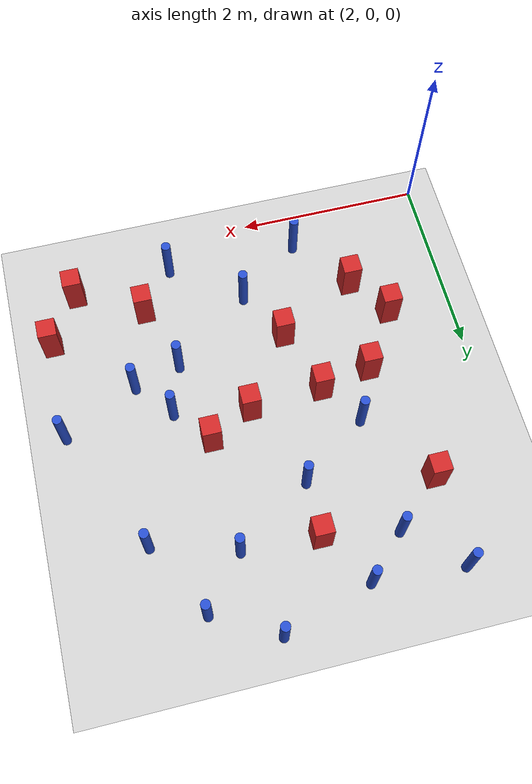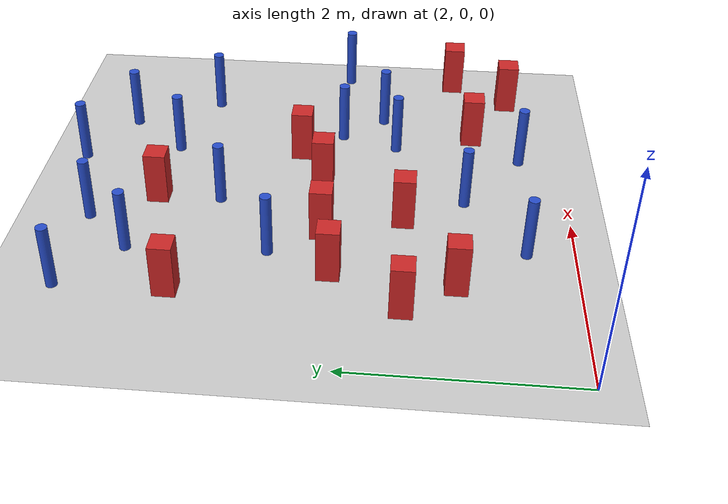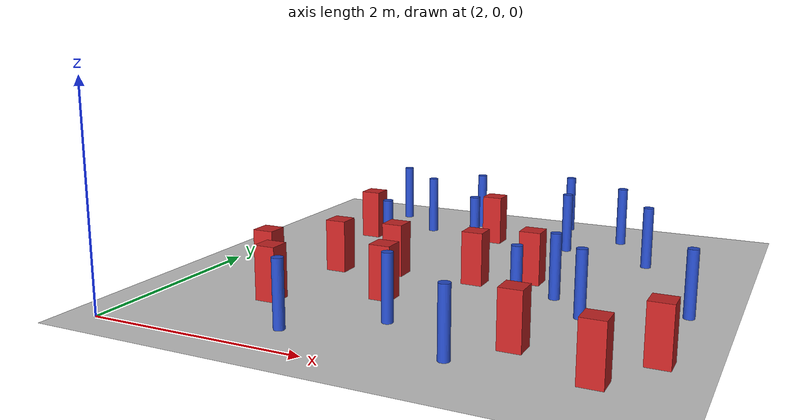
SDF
<sdf version="1.6">
 <world name="default">
  <model name="ground_plane">
   <static>1</static>
   <link name="link">
    <collision name="collision">
     <geometry><plane><normal>0 0 1</normal><size>100 100</size></plane></geometry>
     <surface><friction><ode><mu>100</mu><mu2>50</mu2></ode></friction></surface>
    </collision>
    <visual name="visual">
     <cast_shadows>0</cast_shadows>
     <geometry><plane><normal>0 0 1</normal><size>100 100</size></plane></geometry>
     <material>
      <ambient>1.0 1.0 1.0 1.0</ambient>
      <diffuse>0.8 0.8 0.8 1.0</diffuse>
      <specular>0.01 0.01 0.01 1.000000</specular>
     </material>
    </visual>
   </link>
  </model>
  <model name="square_post_obstacle4">
   <static>true</static>
   <pose>3.69280537728 2.22293517333 -6.11067671241e-07 -5.50515727128e-06 -8.79689657224e-07 2.37013304536e-05</pose>
   <link name="link">
    <pose>0 0 0.25 0 -0 0</pose>
    <inertial>
     <mass>100</mass>
     <inertia>
      <ixx>0.166667</ixx>
      <ixy>0</ixy>
      <ixz>0</ixz>
      <iyy>0.166667</iyy>
      <iyz>0</iyz>
      <izz>0.166667</izz>
     </inertia>
    </inertial>
    <collision name="collision"><geometry><box><size>.2 .2 .5</size></box></geometry></collision>
    <visual name="visual">
     <geometry><box><size>.2 .2 .5</size></box></geometry>
     <material>
      <script><name>Gazebo/Red</name><uri>file://media/materials/scripts/gazebo.material</uri></script>
     </material>
    </visual>
   </link>
  </model>
  <model name="square_post_obstacle7">
   <static>true</static>
   <pose>3.92760608452 1.5035485975 -6.11067671241e-07 -5.50515727128e-06 -8.79689657224e-07 2.37013304536e-05</pose>
   <link name="link">
    <pose>0 0 0.25 0 -0 0</pose>
    <inertial>
     <mass>100</mass>
     <inertia>
      <ixx>0.166667</ixx>
      <ixy>0</ixy>
      <ixz>0</ixz>
      <iyy>0.166667</iyy>
      <iyz>0</iyz>
      <izz>0.166667</izz>
     </inertia>
    </inertial>
    <collision name="collision"><geometry><box><size>.2 .2 .5</size></box></geometry></collision>
    <visual name="visual">
     <geometry><box><size>.2 .2 .5</size></box></geometry>
     <material>
      <script><name>Gazebo/Red</name><uri>file://media/materials/scripts/gazebo.material</uri></script>
     </material>
    </visual>
   </link>
  </model>
  <model name="pole_obstacle19">
   <static>true</static>
   <pose>4.24416532773 0.94798718305 -9.47619616065e-06 5.49618799737e-07 2.36310414061e-07 -1.550905348e-07</pose>
   <link name="link">
    <pose>0 0 0.3 0 -0 0</pose>
    <inertial>
     <mass>1</mass>
     <inertia><ixx>0.145833</ixx><ixy>0</ixy><ixz>0</ixz><iyy>0.145833</iyy><iyz>0</iyz><izz>0.125</izz></inertia>
    </inertial>
    <collision name="collision">
     <geometry><cylinder><radius>0.05</radius><length>.6</length></cylinder></geometry>
    </collision>
    <visual name="visual">
     <geometry><cylinder><radius>0.05</radius><length>.6</length></cylinder></geometry>
     <material>
      <script><name>Gazebo/Blue</name><uri>file://media/materials/scripts/gazebo.material</uri></script>
     </material>
    </visual>
   </link>
  </model>
  <model name="pole_obstacle33">
   <static>true</static>
   <pose>6.4372163077 2.13845733889 -9.47619616065e-06 5.49618799738e-07 2.36310414051e-07 -1.55090534805e-07</pose>
   <link name="link">
    <pose>0 0 0.3 0 -0 0</pose>
    <inertial>
     <mass>1</mass>
     <inertia><ixx>0.145833</ixx><ixy>0</ixy><ixz>0</ixz><iyy>0.145833</iyy><iyz>0</iyz><izz>0.125</izz></inertia>
    </inertial>
    <collision name="collision">
     <geometry><cylinder><radius>0.05</radius><length>.6</length></cylinder></geometry>
    </collision>
    <visual name="visual">
     <geometry><cylinder><radius>0.05</radius><length>.6</length></cylinder></geometry>
     <material>
      <script><name>Gazebo/Blue</name><uri>file://media/materials/scripts/gazebo.material</uri></script>
     </material>
    </visual>
   </link>
  </model>
  <model name="pole_obstacle41">
   <static>true</static>
   <pose>4.71669889044 4.6376784754 -9.47619616065e-06 5.49618799737e-07 2.36310414037e-07 -1.55090534814e-07</pose>
   <link name="link">
    <pose>0 0 0.3 0 -0 0</pose>
    <inertial>
     <mass>1</mass>
     <inertia><ixx>0.145833</ixx><ixy>0</ixy><ixz>0</ixz><iyy>0.145833</iyy><iyz>0</iyz><izz>0.125</izz></inertia>
    </inertial>
    <collision name="collision">
     <geometry><cylinder><radius>0.05</radius><length>.6</length></cylinder></geometry>
    </collision>
    <visual name="visual">
     <geometry><cylinder><radius>0.05</radius><length>.6</length></cylinder></geometry>
     <material>
      <script><name>Gazebo/Blue</name><uri>file://media/materials/scripts/gazebo.material</uri></script>
     </material>
    </visual>
   </link>
  </model>
  <model name="square_post_obstacle34">
   <static>true</static>
   <pose>4.4838422357 2.2754608265 -6.11067671241e-07 -5.50515727128e-06 -8.79689657224e-07 2.37013304536e-05</pose>
   <link name="link">
    <pose>0 0 0.25 0 -0 0</pose>
    <inertial>
     <mass>100</mass>
     <inertia>
      <ixx>0.166667</ixx>
      <ixy>0</ixy>
      <ixz>0</ixz>
      <iyy>0.166667</iyy>
      <iyz>0</iyz>
      <izz>0.166667</izz>
     </inertia>
    </inertial>
    <collision name="collision"><geometry><box><size>.2 .2 .5</size></box></geometry></collision>
    <visual name="visual">
     <geometry><box><size>.2 .2 .5</size></box></geometry>
     <material>
      <script><name>Gazebo/Red</name><uri>file://media/materials/scripts/gazebo.material</uri></script>
     </material>
    </visual>
   </link>
  </model>
  <model name="pole_obstacle54">
   <static>true</static>
   <pose>5.38299766523 4.27145445951 -9.47619616065e-06 5.49618799737e-07 2.36310414037e-07 -1.55090534814e-07</pose>
   <link name="link">
    <pose>0 0 0.3 0 -0 0</pose>
    <inertial>
     <mass>1</mass>
     <inertia><ixx>0.145833</ixx><ixy>0</ixy><ixz>0</ixz><iyy>0.145833</iyy><iyz>0</iyz><izz>0.125</izz></inertia>
    </inertial>
    <collision name="collision">
     <geometry><cylinder><radius>0.05</radius><length>.6</length></cylinder></geometry>
    </collision>
    <visual name="visual">
     <geometry><cylinder><radius>0.05</radius><length>.6</length></cylinder></geometry>
     <material>
      <script><name>Gazebo/Blue</name><uri>file://media/materials/scripts/gazebo.material</uri></script>
     </material>
    </visual>
   </link>
  </model>
  <model name="square_post_obstacle42">
   <static>true</static>
   <pose>5.35175985893 0.859702242801 -6.11067671241e-07 -5.50515727128e-06 -8.79689657224e-07 2.37013304536e-05</pose>
   <link name="link">
    <pose>0 0 0.25 0 -0 0</pose>
    <inertial>
     <mass>100</mass>
     <inertia>
      <ixx>0.166667</ixx>
      <ixy>0</ixy>
      <ixz>0</ixz>
      <iyy>0.166667</iyy>
      <iyz>0</iyz>
      <izz>0.166667</izz>
     </inertia>
    </inertial>
    <collision name="collision"><geometry><box><size>.2 .2 .5</size></box></geometry></collision>
    <visual name="visual">
     <geometry><box><size>.2 .2 .5</size></box></geometry>
     <material>
      <script><name>Gazebo/Red</name><uri>file://media/materials/scripts/gazebo.material</uri></script>
     </material>
    </visual>
   </link>
  </model>
  <model name="square_post_obstacle44">
   <static>true</static>
   <pose>2.81730123864 3.44265855016 -6.11067671241e-07 -5.50515727128e-06 -8.79689657224e-07 2.37013304536e-05</pose>
   <link name="link">
    <pose>0 0 0.25 0 -0 0</pose>
    <inertial>
     <mass>100</mass>
     <inertia>
      <ixx>0.166667</ixx>
      <ixy>0</ixy>
      <ixz>0</ixz>
      <iyy>0.166667</iyy>
      <iyz>0</iyz>
      <izz>0.166667</izz>
     </inertia>
    </inertial>
    <collision name="collision"><geometry><box><size>.2 .2 .5</size></box></geometry></collision>
    <visual name="visual">
     <geometry><box><size>.2 .2 .5</size></box></geometry>
     <material>
      <script><name>Gazebo/Red</name><uri>file://media/materials/scripts/gazebo.material</uri></script>
     </material>
    </visual>
   </link>
  </model>
  <model name="pole_obstacle62">
   <static>true</static>
   <pose>3.32741732016 3.91408078744 -9.47619616065e-06 5.49618799737e-07 2.36310414051e-07 -1.55090534807e-07</pose>
   <link name="link">
    <pose>0 0 0.3 0 -0 0</pose>
    <inertial>
     <mass>1</mass>
     <inertia><ixx>0.145833</ixx><ixy>0</ixy><ixz>0</ixz><iyy>0.145833</iyy><iyz>0</iyz><izz>0.125</izz></inertia>
    </inertial>
    <collision name="collision">
     <geometry><cylinder><radius>0.05</radius><length>.6</length></cylinder></geometry>
    </collision>
    <visual name="visual">
     <geometry><cylinder><radius>0.05</radius><length>.6</length></cylinder></geometry>
     <material>
      <script><name>Gazebo/Blue</name><uri>file://media/materials/scripts/gazebo.material</uri></script>
     </material>
    </visual>
   </link>
  </model>
  <model name="square_post_obstacle56">
   <static>true</static>
   <pose>3.05071177633 1.03974126625 -6.11067671241e-07 -5.50515727128e-06 -8.79689657224e-07 2.37013304536e-05</pose>
   <link name="link">
    <pose>0 0 0.25 0 -0 0</pose>
    <inertial>
     <mass>100</mass>
     <inertia>
      <ixx>0.166667</ixx>
      <ixy>0</ixy>
      <ixz>0</ixz>
      <iyy>0.166667</iyy>
      <iyz>0</iyz>
      <izz>0.166667</izz>
     </inertia>
    </inertial>
    <collision name="collision"><geometry><box><size>.2 .2 .5</size></box></geometry></collision>
    <visual name="visual">
     <geometry><box><size>.2 .2 .5</size></box></geometry>
     <material>
      <script><name>Gazebo/Red</name><uri>file://media/materials/scripts/gazebo.material</uri></script>
     </material>
    </visual>
   </link>
  </model>
  <model name="pole_obstacle71">
   <static>true</static>
   <pose>4.11179403503 3.19697628768 -9.47619616065e-06 5.49618799738e-07 2.36310414051e-07 -1.55090534805e-07</pose>
   <link name="link">
    <pose>0 0 0.3 0 -0 0</pose>
    <inertial>
     <mass>1</mass>
     <inertia><ixx>0.145833</ixx><ixy>0</ixy><ixz>0</ixz><iyy>0.145833</iyy><iyz>0</iyz><izz>0.125</izz></inertia>
    </inertial>
    <collision name="collision">
     <geometry><cylinder><radius>0.05</radius><length>.6</length></cylinder></geometry>
    </collision>
    <visual name="visual">
     <geometry><cylinder><radius>0.05</radius><length>.6</length></cylinder></geometry>
     <material>
      <script><name>Gazebo/Blue</name><uri>file://media/materials/scripts/gazebo.material</uri></script>
     </material>
    </visual>
   </link>
  </model>
  <model name="square_post_obstacle67">
   <static>true</static>
   <pose>6.40763302864 1.03324362311 -6.11067671241e-07 -5.50515727128e-06 -8.79689657224e-07 2.37013304536e-05</pose>
   <link name="link">
    <pose>0 0 0.25 0 -0 0</pose>
    <inertial>
     <mass>100</mass>
     <inertia>
      <ixx>0.166667</ixx>
      <ixy>0</ixy>
      <ixz>0</ixz>
      <iyy>0.166667</iyy>
      <iyz>0</iyz>
      <izz>0.166667</izz>
     </inertia>
    </inertial>
    <collision name="collision"><geometry><box><size>.2 .2 .5</size></box></geometry></collision>
    <visual name="visual">
     <geometry><box><size>.2 .2 .5</size></box></geometry>
     <material>
      <script><name>Gazebo/Red</name><uri>file://media/materials/scripts/gazebo.material</uri></script>
     </material>
    </visual>
   </link>
  </model>
  <model name="pole_obstacle86">
   <static>true</static>
   <pose>5.81162590875 3.48142350158 -9.47619616065e-06 5.49618799738e-07 2.36310414051e-07 -1.55090534805e-07</pose>
   <link name="link">
    <pose>0 0 0.3 0 -0 0</pose>
    <inertial>
     <mass>1</mass>
     <inertia><ixx>0.145833</ixx><ixy>0</ixy><ixz>0</ixz><iyy>0.145833</iyy><iyz>0</iyz><izz>0.125</izz></inertia>
    </inertial>
    <collision name="collision">
     <geometry><cylinder><radius>0.05</radius><length>.6</length></cylinder></geometry>
    </collision>
    <visual name="visual">
     <geometry><cylinder><radius>0.05</radius><length>.6</length></cylinder></geometry>
     <material>
      <script><name>Gazebo/Blue</name><uri>file://media/materials/scripts/gazebo.material</uri></script>
     </material>
    </visual>
   </link>
  </model>
  <model name="pole_obstacle87">
   <static>true</static>
   <pose>4.98019573924 0.405692615105 -9.47619616065e-06 5.49618799737e-07 2.36310414057e-07 -1.55090534802e-07</pose>
   <link name="link">
    <pose>0 0 0.3 0 -0 0</pose>
    <inertial>
     <mass>1</mass>
     <inertia><ixx>0.145833</ixx><ixy>0</ixy><ixz>0</ixz><iyy>0.145833</iyy><iyz>0</iyz><izz>0.125</izz></inertia>
    </inertial>
    <collision name="collision">
     <geometry><cylinder><radius>0.05</radius><length>.6</length></cylinder></geometry>
    </collision>
    <visual name="visual">
     <geometry><cylinder><radius>0.05</radius><length>.6</length></cylinder></geometry>
     <material>
      <script><name>Gazebo/Blue</name><uri>file://media/materials/scripts/gazebo.material</uri></script>
     </material>
    </visual>
   </link>
  </model>
  <model name="pole_obstacle93">
   <static>true</static>
   <pose>3.53884156486 0.422860158452 -9.47619616065e-06 5.49618799738e-07 2.36310414074e-07 -1.55090534794e-07</pose>
   <link name="link">
    <pose>0 0 0.3 0 -0 0</pose>
    <inertial>
     <mass>1</mass>
     <inertia><ixx>0.145833</ixx><ixy>0</ixy><ixz>0</ixz><iyy>0.145833</iyy><iyz>0</iyz><izz>0.125</izz></inertia>
    </inertial>
    <collision name="collision">
     <geometry><cylinder><radius>0.05</radius><length>.6</length></cylinder></geometry>
    </collision>
    <visual name="visual">
     <geometry><cylinder><radius>0.05</radius><length>.6</length></cylinder></geometry>
     <material>
      <script><name>Gazebo/Blue</name><uri>file://media/materials/scripts/gazebo.material</uri></script>
     </material>
    </visual>
   </link>
  </model>
  <model name="pole_obstacle96">
   <static>true</static>
   <pose>5.11314997426 1.60261455648 -9.47619616065e-06 5.49618799738e-07 2.36310414071e-07 -1.55090534796e-07</pose>
   <link name="link">
    <pose>0 0 0.3 0 -0 0</pose>
    <inertial>
     <mass>1</mass>
     <inertia><ixx>0.145833</ixx><ixy>0</ixy><ixz>0</ixz><iyy>0.145833</iyy><iyz>0</iyz><izz>0.125</izz></inertia>
    </inertial>
    <collision name="collision">
     <geometry><cylinder><radius>0.05</radius><length>.6</length></cylinder></geometry>
    </collision>
    <visual name="visual">
     <geometry><cylinder><radius>0.05</radius><length>.6</length></cylinder></geometry>
     <material>
      <script><name>Gazebo/Blue</name><uri>file://media/materials/scripts/gazebo.material</uri></script>
     </material>
    </visual>
   </link>
  </model>
  <model name="pole_obstacle111">
   <static>true</static>
   <pose>3.37869174754 2.66776359021 -9.47619616065e-06 5.49618799737e-07 2.36310414051e-07 -1.55090534807e-07</pose>
   <link name="link">
    <pose>0 0 0.3 0 -0 0</pose>
    <inertial>
     <mass>1</mass>
     <inertia><ixx>0.145833</ixx><ixy>0</ixy><ixz>0</ixz><iyy>0.145833</iyy><iyz>0</iyz><izz>0.125</izz></inertia>
    </inertial>
    <collision name="collision">
     <geometry><cylinder><radius>0.05</radius><length>.6</length></cylinder></geometry>
    </collision>
    <visual name="visual">
     <geometry><cylinder><radius>0.05</radius><length>.6</length></cylinder></geometry>
     <material>
      <script><name>Gazebo/Blue</name><uri>file://media/materials/scripts/gazebo.material</uri></script>
     </material>
    </visual>
   </link>
  </model>
  <model name="pole_obstacle116">
   <static>true</static>
   <pose>5.622537648 1.7429333963 -9.47619616065e-06 5.49618799738e-07 2.36310414071e-07 -1.55090534796e-07</pose>
   <link name="link">
    <pose>0 0 0.3 0 -0 0</pose>
    <inertial>
     <mass>1</mass>
     <inertia><ixx>0.145833</ixx><ixy>0</ixy><ixz>0</ixz><iyy>0.145833</iyy><iyz>0</iyz><izz>0.125</izz></inertia>
    </inertial>
    <collision name="collision">
     <geometry><cylinder><radius>0.05</radius><length>.6</length></cylinder></geometry>
    </collision>
    <visual name="visual">
     <geometry><cylinder><radius>0.05</radius><length>.6</length></cylinder></geometry>
     <material>
      <script><name>Gazebo/Blue</name><uri>file://media/materials/scripts/gazebo.material</uri></script>
     </material>
    </visual>
   </link>
  </model>
  <model name="square_post_obstacle150">
   <static>true</static>
   <pose>4.95565555831 2.51809444745 -6.11067671241e-07 -5.50515727128e-06 -8.79689657224e-07 2.37013304536e-05</pose>
   <link name="link">
    <pose>0 0 0.25 0 -0 0</pose>
    <inertial>
     <mass>100</mass>
     <inertia>
      <ixx>0.166667</ixx>
      <ixy>0</ixy>
      <ixz>0</ixz>
      <iyy>0.166667</iyy>
      <iyz>0</iyz>
      <izz>0.166667</izz>
     </inertia>
    </inertial>
    <collision name="collision"><geometry><box><size>.2 .2 .5</size></box></geometry></collision>
    <visual name="visual">
     <geometry><box><size>.2 .2 .5</size></box></geometry>
     <material>
      <script><name>Gazebo/Red</name><uri>file://media/materials/scripts/gazebo.material</uri></script>
     </material>
    </visual>
   </link>
  </model>
  <model name="pole_obstacle155">
   <static>true</static>
   <pose>3.75396969724 4.34154133363 -9.47619616065e-06 5.49618799738e-07 2.3631041406e-07 -1.55090534801e-07</pose>
   <link name="link">
    <pose>0 0 0.3 0 -0 0</pose>
    <inertial>
     <mass>1</mass>
     <inertia><ixx>0.145833</ixx><ixy>0</ixy><ixz>0</ixz><iyy>0.145833</iyy><iyz>0</iyz><izz>0.125</izz></inertia>
    </inertial>
    <collision name="collision">
     <geometry><cylinder><radius>0.05</radius><length>.6</length></cylinder></geometry>
    </collision>
    <visual name="visual">
     <geometry><cylinder><radius>0.05</radius><length>.6</length></cylinder></geometry>
     <material>
      <script><name>Gazebo/Blue</name><uri>file://media/materials/scripts/gazebo.material</uri></script>
     </material>
    </visual>
   </link>
  </model>
  <model name="pole_obstacle156">
   <static>true</static>
   <pose>2.78645025342 4.40657249441 -9.47619616065e-06 5.49618799738e-07 2.3631041406e-07 -1.55090534801e-07</pose>
   <link name="link">
    <pose>0 0 0.3 0 -0 0</pose>
    <inertial>
     <mass>1</mass>
     <inertia><ixx>0.145833</ixx><ixy>0</ixy><ixz>0</ixz><iyy>0.145833</iyy><iyz>0</iyz><izz>0.125</izz></inertia>
    </inertial>
    <collision name="collision">
     <geometry><cylinder><radius>0.05</radius><length>.6</length></cylinder></geometry>
    </collision>
    <visual name="visual">
     <geometry><cylinder><radius>0.05</radius><length>.6</length></cylinder></geometry>
     <material>
      <script><name>Gazebo/Blue</name><uri>file://media/materials/scripts/gazebo.material</uri></script>
     </material>
    </visual>
   </link>
  </model>
  <model name="pole_obstacle166">
   <static>true</static>
   <pose>5.28716187503 2.13662970273 -9.47619616065e-06 5.49618799738e-07 2.36310414051e-07 -1.55090534805e-07</pose>
   <link name="link">
    <pose>0 0 0.3 0 -0 0</pose>
    <inertial>
     <mass>1</mass>
     <inertia><ixx>0.145833</ixx><ixy>0</ixy><ixz>0</ixz><iyy>0.145833</iyy><iyz>0</iyz><izz>0.125</izz></inertia>
    </inertial>
    <collision name="collision">
     <geometry><cylinder><radius>0.05</radius><length>.6</length></cylinder></geometry>
    </collision>
    <visual name="visual">
     <geometry><cylinder><radius>0.05</radius><length>.6</length></cylinder></geometry>
     <material>
      <script><name>Gazebo/Blue</name><uri>file://media/materials/scripts/gazebo.material</uri></script>
     </material>
    </visual>
   </link>
  </model>
  <model name="pole_obstacle168">
   <static>true</static>
   <pose>4.93395761174 3.74017706079 -9.47619616065e-06 5.49618799738e-07 2.36310414051e-07 -1.55090534805e-07</pose>
   <link name="link">
    <pose>0 0 0.3 0 -0 0</pose>
    <inertial>
     <mass>1</mass>
     <inertia><ixx>0.145833</ixx><ixy>0</ixy><ixz>0</ixz><iyy>0.145833</iyy><iyz>0</iyz><izz>0.125</izz></inertia>
    </inertial>
    <collision name="collision">
     <geometry><cylinder><radius>0.05</radius><length>.6</length></cylinder></geometry>
    </collision>
    <visual name="visual">
     <geometry><cylinder><radius>0.05</radius><length>.6</length></cylinder></geometry>
     <material>
      <script><name>Gazebo/Blue</name><uri>file://media/materials/scripts/gazebo.material</uri></script>
     </material>
    </visual>
   </link>
  </model>
  <model name="square_post_obstacle168">
   <static>true</static>
   <pose>4.11889226667 3.7769641063 -6.11067671241e-07 -5.50515727128e-06 -8.79689657224e-07 2.37013304536e-05</pose>
   <link name="link">
    <pose>0 0 0.25 0 -0 0</pose>
    <inertial>
     <mass>100</mass>
     <inertia>
      <ixx>0.166667</ixx>
      <ixy>0</ixy>
      <ixz>0</ixz>
      <iyy>0.166667</iyy>
      <iyz>0</iyz>
      <izz>0.166667</izz>
     </inertia>
    </inertial>
    <collision name="collision"><geometry><box><size>.2 .2 .5</size></box></geometry></collision>
    <visual name="visual">
     <geometry><box><size>.2 .2 .5</size></box></geometry>
     <material>
      <script><name>Gazebo/Red</name><uri>file://media/materials/scripts/gazebo.material</uri></script>
     </material>
    </visual>
   </link>
  </model>
  <model name="square_post_obstacle176">
   <static>true</static>
   <pose>2.72904402423 1.48918091928 -6.11067671241e-07 -5.50515727128e-06 -8.79689657224e-07 2.37013304536e-05</pose>
   <link name="link">
    <pose>0 0 0.25 0 -0 0</pose>
    <inertial>
     <mass>100</mass>
     <inertia>
      <ixx>0.166667</ixx>
      <ixy>0</ixy>
      <ixz>0</ixz>
      <iyy>0.166667</iyy>
      <iyz>0</iyz>
      <izz>0.166667</izz>
     </inertia>
    </inertial>
    <collision name="collision"><geometry><box><size>.2 .2 .5</size></box></geometry></collision>
    <visual name="visual">
     <geometry><box><size>.2 .2 .5</size></box></geometry>
     <material>
      <script><name>Gazebo/Red</name><uri>file://media/materials/scripts/gazebo.material</uri></script>
     </material>
    </visual>
   </link>
  </model>
  <model name="square_post_obstacle198">
   <static>true</static>
   <pose>6.06305859653 0.486389196642 -6.11067671241e-07 -5.50515727128e-06 -8.79689657224e-07 2.37013304536e-05</pose>
   <link name="link">
    <pose>0 0 0.25 0 -0 0</pose>
    <inertial>
     <mass>100</mass>
     <inertia>
      <ixx>0.166667</ixx>
      <ixy>0</ixy>
      <ixz>0</ixz>
      <iyy>0.166667</iyy>
      <iyz>0</iyz>
      <izz>0.166667</izz>
     </inertia>
    </inertial>
    <collision name="collision"><geometry><box><size>.2 .2 .5</size></box></geometry></collision>
    <visual name="visual">
     <geometry><box><size>.2 .2 .5</size></box></geometry>
     <material>
      <script><name>Gazebo/Red</name><uri>file://media/materials/scripts/gazebo.material</uri></script>
     </material>
    </visual>
   </link>
  </model>
  <model name="square_post_obstacle208">
   <static>true</static>
   <pose>3.13847730589 2.11360986971 -6.11067671241e-07 -5.50515727128e-06 -8.79689657224e-07 2.37013304536e-05</pose>
   <link name="link">
    <pose>0 0 0.25 0 -0 0</pose>
    <inertial>
     <mass>100</mass>
     <inertia>
      <ixx>0.166667</ixx>
      <ixy>0</ixy>
      <ixz>0</ixz>
      <iyy>0.166667</iyy>
      <iyz>0</iyz>
      <izz>0.166667</izz>
     </inertia>
    </inertial>
    <collision name="collision"><geometry><box><size>.2 .2 .5</size></box></geometry></collision>
    <visual name="visual">
     <geometry><box><size>.2 .2 .5</size></box></geometry>
     <material>
      <script><name>Gazebo/Red</name><uri>file://media/materials/scripts/gazebo.material</uri></script>
     </material>
    </visual>
   </link>
  </model>
 </world>
</sdf>
